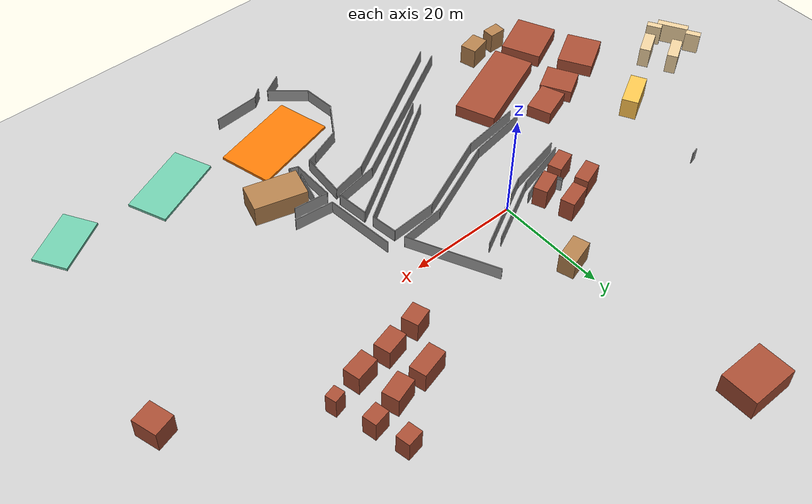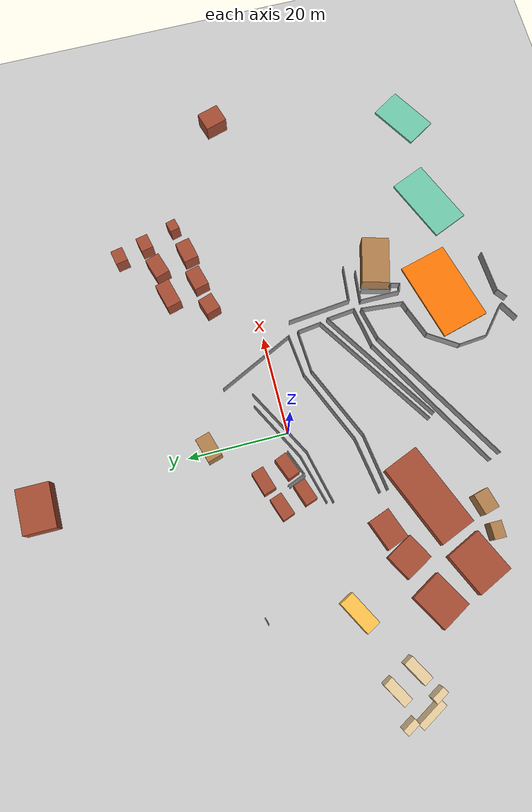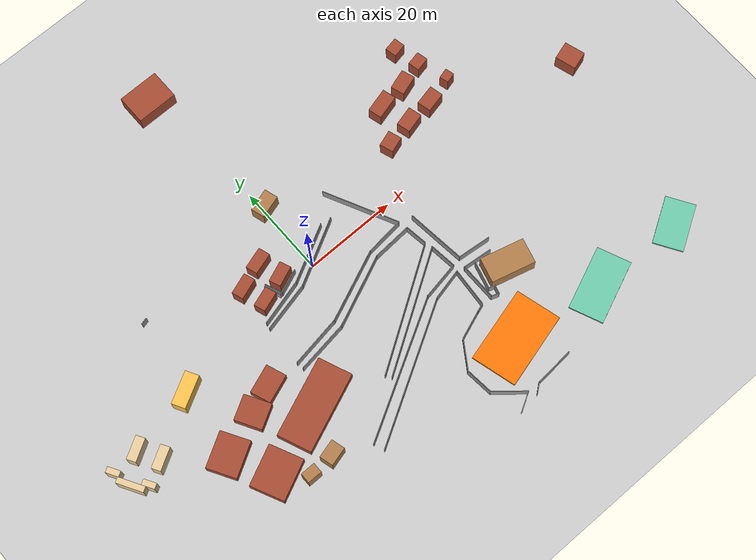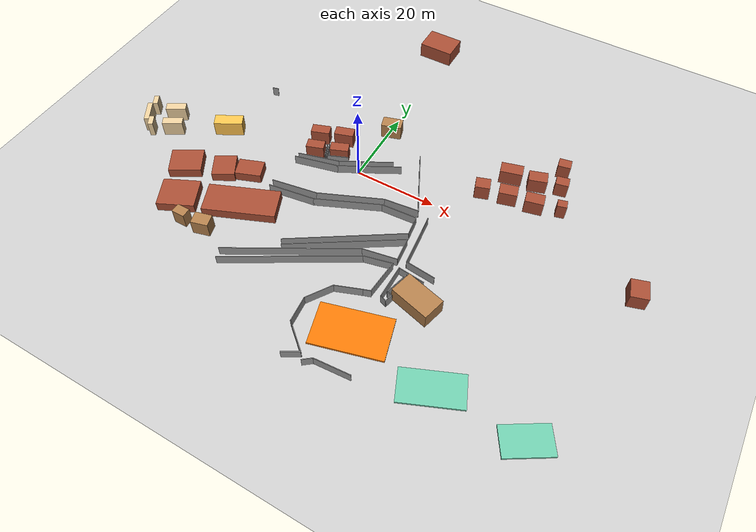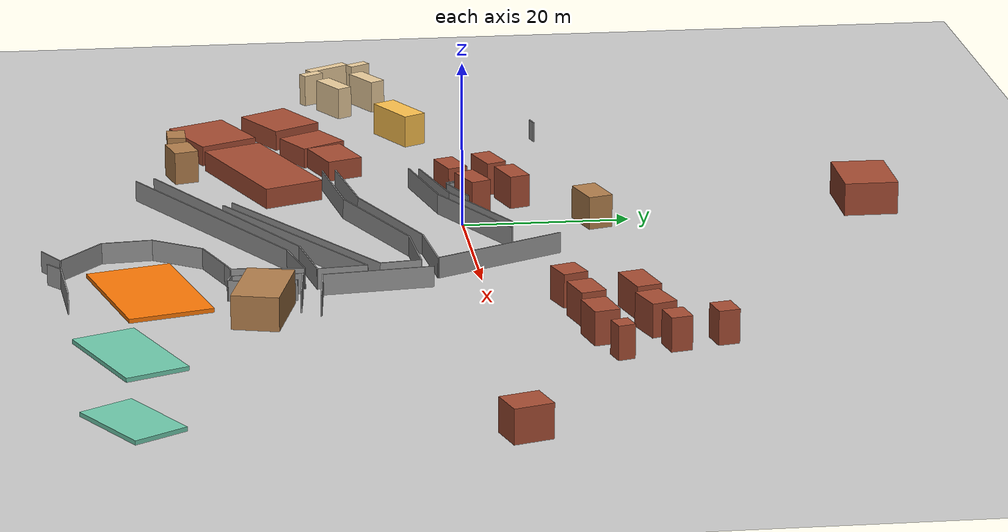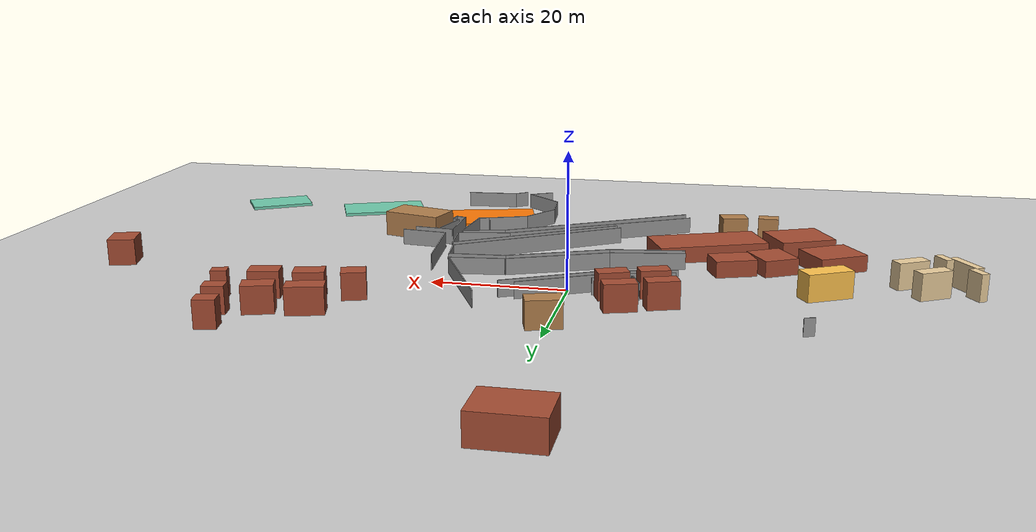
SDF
<sdf version="1.7">
 <world name="default">
  <model name="ground_plane">
   <static>1</static>
   <link name="link">
    <collision name="collision">
     <geometry><plane><normal>0 0 1</normal><size>100 100</size></plane></geometry>
     <surface><friction><ode><mu>100</mu><mu2>50</mu2></ode></friction></surface>
    </collision>
    <visual name="visual">
     <cast_shadows>0</cast_shadows>
     <geometry><plane><normal>0 0 1</normal><size>100 100</size></plane></geometry>
     <material>
      <script><uri>file://media/materials/scripts/gazebo.material</uri><name>Gazebo/Grey</name></script>
     </material>
    </visual>
   </link>
  </model>
  <model name="final_max_v1">
   <pose>-2.52311 0.689104 0 0 -0 0</pose>
   <link name="Wall_133">
    <collision name="Wall_133_Collision">
     <geometry><box><size>7.27213 0.15 2.5</size></box></geometry>
     <pose>0 0 1.25 0 -0 0</pose>
    </collision>
    <visual name="Wall_133_Visual">
     <pose>0 0 1.25 0 -0 0</pose>
     <geometry><box><size>7.27213 0.15 2.5</size></box></geometry>
     <material>
      <script><uri>file://media/materials/scripts/gazebo.material</uri><name>Gazebo/Grey</name></script>
      <ambient>1 1 1 1</ambient>
     </material>
     <meta><layer>0</layer></meta>
    </visual>
    <pose>29.0757 -19.6259 0 0 -0 3.03807</pose>
   </link>
   <link name="Wall_134">
    <collision name="Wall_134_Collision">
     <geometry><box><size>13.0122 0.15 2.5</size></box></geometry>
     <pose>0 0 1.25 0 -0 0</pose>
    </collision>
    <visual name="Wall_134_Visual">
     <pose>0 0 1.25 0 -0 0</pose>
     <geometry><box><size>13.0122 0.15 2.5</size></box></geometry>
     <material>
      <script><uri>file://media/materials/scripts/gazebo.material</uri><name>Gazebo/Grey</name></script>
      <ambient>1 1 1 1</ambient>
     </material>
     <meta><layer>0</layer></meta>
    </visual>
    <pose>24.8437 -12.8639 0 0 -0 1.67829</pose>
   </link>
   <link name="Wall_340">
    <collision name="Wall_340_Collision">
     <geometry><box><size>3.71476 0.15 2.5</size></box></geometry>
     <pose>0 0 1.25 0 -0 0</pose>
    </collision>
    <visual name="Wall_340_Visual">
     <pose>0 0 1.25 0 -0 0</pose>
     <geometry><box><size>3.71476 0.15 2.5</size></box></geometry>
     <material>
      <script><uri>file://media/materials/scripts/gazebo.material</uri><name>Gazebo/Grey</name></script>
      <ambient>1 1 1 1</ambient>
     </material>
     <meta><layer>0</layer></meta>
    </visual>
    <pose>-7.2047 0.047724 0 0 -0 1.9622</pose>
   </link>
   <link name="Wall_343">
    <collision name="Wall_343_Collision">
     <geometry><box><size>3.92824 0.15 2.5</size></box></geometry>
     <pose>0 0 1.25 0 -0 0</pose>
    </collision>
    <visual name="Wall_343_Visual">
     <pose>0 0 1.25 0 -0 0</pose>
     <geometry><box><size>3.92824 0.15 2.5</size></box></geometry>
     <material>
      <script><uri>file://media/materials/scripts/gazebo.material</uri><name>Gazebo/Grey</name></script>
      <ambient>1 1 1 1</ambient>
     </material>
     <meta><layer>0</layer></meta>
    </visual>
    <pose>-6.76011 0.204637 0 0 -0 -1.18772</pose>
   </link>
   <link name="Wall_344">
    <collision name="Wall_344_Collision">
     <geometry><box><size>5.45315 0.15 2.5</size></box></geometry>
     <pose>0 0 1.25 0 -0 0</pose>
    </collision>
    <visual name="Wall_344_Visual">
     <pose>0 0 1.25 0 -0 0</pose>
     <geometry><box><size>5.45315 0.15 2.5</size></box></geometry>
     <material>
      <script><uri>file://media/materials/scripts/gazebo.material</uri><name>Gazebo/Grey</name></script>
      <ambient>1 1 1 1</ambient>
     </material>
     <meta><layer>0</layer></meta>
    </visual>
    <pose>-3.5957 -0.553775 0 0 -0 0.384169</pose>
   </link>
   <link name="Wall_40">
    <collision name="Wall_40_Collision">
     <geometry><box><size>6 0.15 2.5</size></box></geometry>
     <pose>0 0 1.25 0 -0 0</pose>
    </collision>
    <visual name="Wall_40_Visual">
     <pose>0 0 1.25 0 -0 0</pose>
     <geometry><box><size>6 0.15 2.5</size></box></geometry>
     <material>
      <script><uri>file://media/materials/scripts/gazebo.material</uri><name>Gazebo/Grey</name></script>
      <ambient>1 1 1 1</ambient>
     </material>
     <meta><layer>0</layer></meta>
    </visual>
    <pose>26.349 -25.1026 0 0 -0 -1.8326</pose>
   </link>
   <link name="Wall_41">
    <collision name="Wall_41_Collision">
     <geometry><box><size>1.48764 0.15 2.5</size></box></geometry>
     <pose>0 0 1.25 0 -0 0</pose>
    </collision>
    <visual name="Wall_41_Visual">
     <pose>0 0 1.25 0 -0 0</pose>
     <geometry><box><size>1.48764 0.15 2.5</size></box></geometry>
     <material>
      <script><uri>file://media/materials/scripts/gazebo.material</uri><name>Gazebo/Grey</name></script>
      <ambient>1 1 1 1</ambient>
     </material>
     <meta><layer>0</layer></meta>
    </visual>
    <pose>26.2317 -28.1229 0 0 -0 -0.295878</pose>
   </link>
   <link name="Wall_42">
    <collision name="Wall_42_Collision">
     <geometry><box><size>2 0.15 2.5</size></box></geometry>
     <pose>0 0 1.25 0 -0 0</pose>
    </collision>
    <visual name="Wall_42_Visual">
     <pose>0 0 1.25 0 -0 0</pose>
     <geometry><box><size>2 0.15 2.5</size></box></geometry>
     <material>
      <script><uri>file://media/materials/scripts/gazebo.material</uri><name>Gazebo/Grey</name></script>
      <ambient>1 1 1 1</ambient>
     </material>
     <meta><layer>0</layer></meta>
    </visual>
    <pose>26.6321 -29.2114 0 0 -0 -1.8326</pose>
   </link>
   <link name="Wall_43">
    <collision name="Wall_43_Collision">
     <geometry><box><size>1.74606 0.15 2.5</size></box></geometry>
     <pose>0 0 1.25 0 -0 0</pose>
    </collision>
    <visual name="Wall_43_Visual">
     <pose>0 0 1.25 0 -0 0</pose>
     <geometry><box><size>1.74606 0.15 2.5</size></box></geometry>
     <material>
      <script><uri>file://media/materials/scripts/gazebo.material</uri><name>Gazebo/Grey</name></script>
      <ambient>1 1 1 1</ambient>
     </material>
     <meta><layer>0</layer></meta>
    </visual>
    <pose>25.6408 -29.8375 0 0 -0 2.79991</pose>
   </link>
   <link name="Wall_44">
    <collision name="Wall_44_Collision">
     <geometry><box><size>8.25 0.15 2.5</size></box></geometry>
     <pose>0 0 1.25 0 -0 0</pose>
    </collision>
    <visual name="Wall_44_Visual">
     <pose>0 0 1.25 0 -0 0</pose>
     <geometry><box><size>8.25 0.15 2.5</size></box></geometry>
     <material>
      <script><uri>file://media/materials/scripts/gazebo.material</uri><name>Gazebo/Grey</name></script>
      <ambient>1 1 1 1</ambient>
     </material>
     <meta><layer>0</layer></meta>
    </visual>
    <pose>24.8889 -25.5201 0 0 -0 1.5708</pose>
   </link>
   <link name="Wall_45">
    <collision name="Wall_45_Collision">
     <geometry><box><size>6.45508 0.15 2.5</size></box></geometry>
     <pose>0 0 1.25 0 -0 0</pose>
    </collision>
    <visual name="Wall_45_Visual">
     <pose>0 0 1.25 0 -0 0</pose>
     <geometry><box><size>6.45508 0.15 2.5</size></box></geometry>
     <material>
      <script><uri>file://media/materials/scripts/gazebo.material</uri><name>Gazebo/Grey</name></script>
      <ambient>1 1 1 1</ambient>
     </material>
     <meta><layer>0</layer></meta>
    </visual>
    <pose>28.0239 -21.8018 0 0 -0 -0.105418</pose>
   </link>
   <link name="Wall_452">
    <collision name="Wall_452_Collision">
     <geometry><box><size>10.25 0.15 2.5</size></box></geometry>
     <pose>0 0 1.25 0 -0 0</pose>
    </collision>
    <visual name="Wall_452_Visual">
     <pose>0 0 1.25 0 -0 0</pose>
     <geometry><box><size>10.25 0.15 2.5</size></box></geometry>
     <material>
      <script><uri>file://media/materials/scripts/gazebo.material</uri><name>Gazebo/Grey</name></script>
      <ambient>1 1 1 1</ambient>
     </material>
     <meta><layer>0</layer></meta>
    </visual>
    <pose>-7.47787 -3.02001 0 0 -0 0.261799</pose>
   </link>
   <link name="Wall_453">
    <collision name="Wall_453_Collision">
     <geometry><box><size>13.3527 0.15 2.5</size></box></geometry>
     <pose>0 0 1.25 0 -0 0</pose>
    </collision>
    <visual name="Wall_453_Visual">
     <pose>0 0 1.25 0 -0 0</pose>
     <geometry><box><size>13.3527 0.15 2.5</size></box></geometry>
     <material>
      <script><uri>file://media/materials/scripts/gazebo.material</uri><name>Gazebo/Grey</name></script>
      <ambient>1 1 1 1</ambient>
     </material>
     <meta><layer>0</layer></meta>
    </visual>
    <pose>3.23877 1.36715 0 0 -0 0.485432</pose>
   </link>
   <link name="Wall_475">
    <collision name="Wall_475_Collision">
     <geometry><box><size>16.9261 0.15 2.5</size></box></geometry>
     <pose>0 0 1.25 0 -0 0</pose>
    </collision>
    <visual name="Wall_475_Visual">
     <pose>0 0 1.25 0 -0 0</pose>
     <geometry><box><size>16.9261 0.15 2.5</size></box></geometry>
     <material>
      <script><uri>file://media/materials/scripts/gazebo.material</uri><name>Gazebo/Grey</name></script>
      <ambient>1 1 1 1</ambient>
     </material>
     <meta><layer>0</layer></meta>
    </visual>
    <pose>17.5605 1.92686 0 0 -0 -1.11557</pose>
   </link>
   <link name="Wall_498">
    <collision name="Wall_498_Collision">
     <geometry><box><size>28.1608 0.15 2.5</size></box></geometry>
     <pose>0 0 1.25 0 -0 0</pose>
    </collision>
    <visual name="Wall_498_Visual">
     <pose>0 0 1.25 0 -0 0</pose>
     <geometry><box><size>28.1608 0.15 2.5</size></box></geometry>
     <material>
      <script><uri>file://media/materials/scripts/gazebo.material</uri><name>Gazebo/Grey</name></script>
      <ambient>1 1 1 1</ambient>
     </material>
     <meta><layer>0</layer></meta>
    </visual>
    <pose>11.0228 -21.4678 0 0 -0 0.566245</pose>
   </link>
   <link name="Wall_503">
    <collision name="Wall_503_Collision">
     <geometry><box><size>31.8278 0.15 2.5</size></box></geometry>
     <pose>0 0 1.25 0 -0 0</pose>
    </collision>
    <visual name="Wall_503_Visual">
     <pose>0 0 1.25 0 -0 0</pose>
     <geometry><box><size>31.8278 0.15 2.5</size></box></geometry>
     <material>
      <script><uri>file://media/materials/scripts/gazebo.material</uri><name>Gazebo/Grey</name></script>
      <ambient>1 1 1 1</ambient>
     </material>
     <meta><layer>0</layer></meta>
    </visual>
    <pose>1.59172 -28.9196 0 0 -0 0.51392</pose>
   </link>
   <link name="Wall_505">
    <collision name="Wall_505_Collision">
     <geometry><box><size>8.37199 0.15 2.5</size></box></geometry>
     <pose>0 0 1.25 0 -0 0</pose>
    </collision>
    <visual name="Wall_505_Visual">
     <pose>0 0 1.25 0 -0 0</pose>
     <geometry><box><size>8.37199 0.15 2.5</size></box></geometry>
     <material>
      <script><uri>file://media/materials/scripts/gazebo.material</uri><name>Gazebo/Grey</name></script>
      <ambient>1 1 1 1</ambient>
     </material>
     <meta><layer>0</layer></meta>
    </visual>
    <pose>19.4335 -20.4214 0 0 -0 0.174045</pose>
   </link>
   <link name="Wall_506">
    <collision name="Wall_506_Collision">
     <geometry><box><size>5.94059 0.15 2.5</size></box></geometry>
     <pose>0 0 1.25 0 -0 0</pose>
    </collision>
    <visual name="Wall_506_Visual">
     <pose>0 0 1.25 0 -0 0</pose>
     <geometry><box><size>5.94059 0.15 2.5</size></box></geometry>
     <material>
      <script><uri>file://media/materials/scripts/gazebo.material</uri><name>Gazebo/Grey</name></script>
      <ambient>1 1 1 1</ambient>
     </material>
     <meta><layer>0</layer></meta>
    </visual>
    <pose>23.1623 -16.832 0 0 -0 1.68157</pose>
   </link>
   <link name="Wall_534">
    <collision name="Wall_534_Collision">
     <geometry><box><size>28.6684 0.15 2.5</size></box></geometry>
     <pose>0 0 1.25 0 -0 0</pose>
    </collision>
    <visual name="Wall_534_Visual">
     <pose>0 0 1.25 0 -0 0</pose>
     <geometry><box><size>28.6684 0.15 2.5</size></box></geometry>
     <material>
      <script><uri>file://media/materials/scripts/gazebo.material</uri><name>Gazebo/Grey</name></script>
      <ambient>1 1 1 1</ambient>
     </material>
     <meta><layer>0</layer></meta>
    </visual>
    <pose>10.3666 -20.1085 0 0 -0 0.573606</pose>
   </link>
   <link name="Wall_540">
    <collision name="Wall_540_Collision">
     <geometry><box><size>11.4761 0.15 2.5</size></box></geometry>
     <pose>0 0 1.25 0 -0 0</pose>
    </collision>
    <visual name="Wall_540_Visual">
     <pose>0 0 1.25 0 -0 0</pose>
     <geometry><box><size>11.4761 0.15 2.5</size></box></geometry>
     <material>
      <script><uri>file://media/materials/scripts/gazebo.material</uri><name>Gazebo/Grey</name></script>
      <ambient>1 1 1 1</ambient>
     </material>
     <meta><layer>0</layer></meta>
    </visual>
    <pose>-7.21545 -15.3556 0 0 -0 0.141897</pose>
   </link>
   <link name="Wall_541">
    <collision name="Wall_541_Collision">
     <geometry><box><size>16.2514 0.15 2.5</size></box></geometry>
     <pose>0 0 1.25 0 -0 0</pose>
    </collision>
    <visual name="Wall_541_Visual">
     <pose>0 0 1.25 0 -0 0</pose>
     <geometry><box><size>16.2514 0.15 2.5</size></box></geometry>
     <material>
      <script><uri>file://media/materials/scripts/gazebo.material</uri><name>Gazebo/Grey</name></script>
      <ambient>1 1 1 1</ambient>
     </material>
     <meta><layer>0</layer></meta>
    </visual>
    <pose>5.77658 -11.3512 0 0 -0 0.409246</pose>
   </link>
   <link name="Wall_542">
    <collision name="Wall_542_Collision">
     <geometry><box><size>8.70937 0.15 2.5</size></box></geometry>
     <pose>0 0 1.25 0 -0 0</pose>
    </collision>
    <visual name="Wall_542_Visual">
     <pose>0 0 1.25 0 -0 0</pose>
     <geometry><box><size>8.70937 0.15 2.5</size></box></geometry>
     <material>
      <script><uri>file://media/materials/scripts/gazebo.material</uri><name>Gazebo/Grey</name></script>
      <ambient>1 1 1 1</ambient>
     </material>
     <meta><layer>0</layer></meta>
    </visual>
    <pose>17.4338 -7.88069 0 0 -0 0.062419</pose>
   </link>
   <link name="Wall_543">
    <collision name="Wall_543_Collision">
     <geometry><box><size>4.94946 0.15 2.5</size></box></geometry>
     <pose>0 0 1.25 0 -0 0</pose>
    </collision>
    <visual name="Wall_543_Visual">
     <pose>0 0 1.25 0 -0 0</pose>
     <geometry><box><size>4.94946 0.15 2.5</size></box></geometry>
     <material>
      <script><uri>file://media/materials/scripts/gazebo.material</uri><name>Gazebo/Grey</name></script>
      <ambient>1 1 1 1</ambient>
     </material>
     <meta><layer>0</layer></meta>
    </visual>
    <pose>22.0244 -9.99213 0 0 -0 -1.43738</pose>
   </link>
   <link name="Wall_548">
    <collision name="Wall_548_Collision">
     <geometry><box><size>16.1594 0.15 2.5</size></box></geometry>
     <pose>0 0 1.25 0 -0 0</pose>
    </collision>
    <visual name="Wall_548_Visual">
     <pose>0 0 1.25 0 -0 0</pose>
     <geometry><box><size>16.1594 0.15 2.5</size></box></geometry>
     <material>
      <script><uri>file://media/materials/scripts/gazebo.material</uri><name>Gazebo/Grey</name></script>
      <ambient>1 1 1 1</ambient>
     </material>
     <meta><layer>0</layer></meta>
    </visual>
    <pose>5.46057 -9.63071 0 0 -0 0.401581</pose>
   </link>
   <link name="Wall_549">
    <collision name="Wall_549_Collision">
     <geometry><box><size>8.61735 0.15 2.5</size></box></geometry>
     <pose>0 0 1.25 0 -0 0</pose>
    </collision>
    <visual name="Wall_549_Visual">
     <pose>0 0 1.25 0 -0 0</pose>
     <geometry><box><size>8.61735 0.15 2.5</size></box></geometry>
     <material>
      <script><uri>file://media/materials/scripts/gazebo.material</uri><name>Gazebo/Grey</name></script>
      <ambient>1 1 1 1</ambient>
     </material>
     <meta><layer>0</layer></meta>
    </visual>
    <pose>17.0384 -6.05442 0 0 -0 0.105888</pose>
   </link>
   <link name="Wall_56">
    <collision name="Wall_56_Collision">
     <geometry><box><size>2.49338 0.15 2.5</size></box></geometry>
     <pose>0 0 1.25 0 -0 0</pose>
    </collision>
    <visual name="Wall_56_Visual">
     <pose>0 0 1.25 0 -0 0</pose>
     <geometry><box><size>2.49338 0.15 2.5</size></box></geometry>
     <material>
      <script><uri>file://media/materials/scripts/gazebo.material</uri><name>Gazebo/Grey</name></script>
      <ambient>1 1 1 1</ambient>
     </material>
     <meta><layer>0</layer></meta>
    </visual>
    <pose>19.35 -49.4619 0 0 -0 0.668129</pose>
   </link>
   <link name="Wall_602">
    <collision name="Wall_602_Collision">
     <geometry><box><size>11.3908 0.15 2.5</size></box></geometry>
     <pose>0 0 1.25 0 -0 0</pose>
    </collision>
    <visual name="Wall_602_Visual">
     <pose>0 0 1.25 0 -0 0</pose>
     <geometry><box><size>11.3908 0.15 2.5</size></box></geometry>
     <material>
      <script><uri>file://media/materials/scripts/gazebo.material</uri><name>Gazebo/Grey</name></script>
      <ambient>1 1 1 1</ambient>
     </material>
     <meta><layer>0</layer></meta>
    </visual>
    <pose>-7.45639 -13.6522 0 0 -0 0.159507</pose>
   </link>
   <link name="Wall_606">
    <collision name="Wall_606_Collision">
     <geometry><box><size>10.961 0.15 2.5</size></box></geometry>
     <pose>0 0 1.25 0 -0 0</pose>
    </collision>
    <visual name="Wall_606_Visual">
     <pose>0 0 1.25 0 -0 0</pose>
     <geometry><box><size>10.961 0.15 2.5</size></box></geometry>
     <material>
      <script><uri>file://media/materials/scripts/gazebo.material</uri><name>Gazebo/Grey</name></script>
      <ambient>1 1 1 1</ambient>
     </material>
     <meta><layer>0</layer></meta>
    </visual>
    <pose>-7.32839 -4.33404 0 0 -0 0.231091</pose>
   </link>
   <link name="Wall_607">
    <collision name="Wall_607_Collision">
     <geometry><box><size>15.5213 0.15 2.5</size></box></geometry>
     <pose>0 0 1.25 0 -0 0</pose>
    </collision>
    <visual name="Wall_607_Visual">
     <pose>0 0 1.25 0 -0 0</pose>
     <geometry><box><size>15.5213 0.15 2.5</size></box></geometry>
     <material>
      <script><uri>file://media/materials/scripts/gazebo.material</uri><name>Gazebo/Grey</name></script>
      <ambient>1 1 1 1</ambient>
     </material>
     <meta><layer>0</layer></meta>
    </visual>
    <pose>4.70413 0.540875 0 0 -0 0.492919</pose>
   </link>
   <link name="Wall_76">
    <collision name="Wall_76_Collision">
     <geometry><box><size>4.25 0.15 2.5</size></box></geometry>
     <pose>0 0 1.25 0 -0 0</pose>
    </collision>
    <visual name="Wall_76_Visual">
     <pose>0 0 1.25 0 -0 0</pose>
     <geometry><box><size>4.25 0.15 2.5</size></box></geometry>
     <material>
      <script><uri>file://media/materials/scripts/gazebo.material</uri><name>Gazebo/Grey</name></script>
      <ambient>1 1 1 1</ambient>
     </material>
     <meta><layer>0</layer></meta>
    </visual>
    <pose>15.5961 -49.7666 0 0 -0 0.523599</pose>
   </link>
   <link name="Wall_77">
    <collision name="Wall_77_Collision">
     <geometry><box><size>7.6073 0.15 2.5</size></box></geometry>
     <pose>0 0 1.25 0 -0 0</pose>
    </collision>
    <visual name="Wall_77_Visual">
     <pose>0 0 1.25 0 -0 0</pose>
     <geometry><box><size>7.6073 0.15 2.5</size></box></geometry>
     <material>
      <script><uri>file://media/materials/scripts/gazebo.material</uri><name>Gazebo/Grey</name></script>
      <ambient>1 1 1 1</ambient>
     </material>
     <meta><layer>0</layer></meta>
    </visual>
    <pose>14.5391 -46.3166 0 0 -0 2.43352</pose>
   </link>
   <link name="Wall_78">
    <collision name="Wall_78_Collision">
     <geometry><box><size>6.10962 0.15 2.5</size></box></geometry>
     <pose>0 0 1.25 0 -0 0</pose>
    </collision>
    <visual name="Wall_78_Visual">
     <pose>0 0 1.25 0 -0 0</pose>
     <geometry><box><size>6.10962 0.15 2.5</size></box></geometry>
     <material>
      <script><uri>file://media/materials/scripts/gazebo.material</uri><name>Gazebo/Grey</name></script>
      <ambient>1 1 1 1</ambient>
     </material>
     <meta><layer>0</layer></meta>
    </visual>
    <pose>11.4307 -40.9246 0 0 -0 1.66355</pose>
   </link>
   <link name="Wall_79">
    <collision name="Wall_79_Collision">
     <geometry><box><size>6.92466 0.15 2.5</size></box></geometry>
     <pose>0 0 1.25 0 -0 0</pose>
    </collision>
    <visual name="Wall_79_Visual">
     <pose>0 0 1.25 0 -0 0</pose>
     <geometry><box><size>6.92466 0.15 2.5</size></box></geometry>
     <material>
      <script><uri>file://media/materials/scripts/gazebo.material</uri><name>Gazebo/Grey</name></script>
      <ambient>1 1 1 1</ambient>
     </material>
     <meta><layer>0</layer></meta>
    </visual>
    <pose>13.0177 -35.1286 0 0 -0 0.988443</pose>
   </link>
   <link name="Wall_8">
    <collision name="Wall_8_Collision">
     <geometry><box><size>8.5714 0.15 2.5</size></box></geometry>
     <pose>0 0 1.25 0 -0 0</pose>
    </collision>
    <visual name="Wall_8_Visual">
     <pose>0 0 1.25 0 -0 0</pose>
     <geometry><box><size>8.5714 0.15 2.5</size></box></geometry>
     <material>
      <script><uri>file://media/materials/scripts/gazebo.material</uri><name>Gazebo/Grey</name></script>
      <ambient>1 1 1 1</ambient>
     </material>
     <meta><layer>0</layer></meta>
    </visual>
    <pose>24.4698 -48.436 0 0 -0 0.071307</pose>
   </link>
   <link name="Wall_80">
    <collision name="Wall_80_Collision">
     <geometry><box><size>6.48148 0.15 2.5</size></box></geometry>
     <pose>0 0 1.25 0 -0 0</pose>
    </collision>
    <visual name="Wall_80_Visual">
     <pose>0 0 1.25 0 -0 0</pose>
     <geometry><box><size>6.48148 0.15 2.5</size></box></geometry>
     <material>
      <script><uri>file://media/materials/scripts/gazebo.material</uri><name>Gazebo/Grey</name></script>
      <ambient>1 1 1 1</ambient>
     </material>
     <meta><layer>0</layer></meta>
    </visual>
    <pose>17.8477 -31.1956 0 0 -0 0.35622</pose>
   </link>
   <link name="Wall_81">
    <collision name="Wall_81_Collision">
     <geometry><box><size>1.89558 0.15 2.5</size></box></geometry>
     <pose>0 0 1.25 0 -0 0</pose>
    </collision>
    <visual name="Wall_81_Visual">
     <pose>0 0 1.25 0 -0 0</pose>
     <geometry><box><size>1.89558 0.15 2.5</size></box></geometry>
     <material>
      <script><uri>file://media/materials/scripts/gazebo.material</uri><name>Gazebo/Grey</name></script>
      <ambient>1 1 1 1</ambient>
     </material>
     <meta><layer>0</layer></meta>
    </visual>
    <pose>21.6427 -29.8156 0 0 -0 0.321751</pose>
   </link>
   <link name="Wall_82">
    <collision name="Wall_82_Collision">
     <geometry><box><size>8.59623 0.15 2.5</size></box></geometry>
     <pose>0 0 1.25 0 -0 0</pose>
    </collision>
    <visual name="Wall_82_Visual">
     <pose>0 0 1.25 0 -0 0</pose>
     <geometry><box><size>8.59623 0.15 2.5</size></box></geometry>
     <material>
      <script><uri>file://media/materials/scripts/gazebo.material</uri><name>Gazebo/Grey</name></script>
      <ambient>1 1 1 1</ambient>
     </material>
     <meta><layer>0</layer></meta>
    </visual>
    <pose>22.8157 -25.3306 0 0 -0 1.48901</pose>
   </link>
   <link name="Wall_83">
    <collision name="Wall_83_Collision">
     <geometry><box><size>6.94571 0.15 2.5</size></box></geometry>
     <pose>0 0 1.25 0 -0 0</pose>
    </collision>
    <visual name="Wall_83_Visual">
     <pose>0 0 1.25 0 -0 0</pose>
     <geometry><box><size>6.94571 0.15 2.5</size></box></geometry>
     <material>
      <script><uri>file://media/materials/scripts/gazebo.material</uri><name>Gazebo/Grey</name></script>
      <ambient>1 1 1 1</ambient>
     </material>
     <meta><layer>0</layer></meta>
    </visual>
    <pose>19.8487 -21.8806 0 0 -0 -2.91632</pose>
   </link>
   <link name="Wall_84">
    <collision name="Wall_84_Collision">
     <geometry><box><size>32.4337 0.15 2.5</size></box></geometry>
     <pose>0 0 1.25 0 -0 0</pose>
    </collision>
    <visual name="Wall_84_Visual">
     <pose>0 0 1.25 0 -0 0</pose>
     <geometry><box><size>32.4337 0.15 2.5</size></box></geometry>
     <material>
      <script><uri>file://media/materials/scripts/gazebo.material</uri><name>Gazebo/Grey</name></script>
      <ambient>1 1 1 1</ambient>
     </material>
     <meta><layer>0</layer></meta>
    </visual>
    <pose>2.59875 -30.7816 0 0 -0 -2.6129</pose>
   </link>
   <static>1</static>
  </model>
  <model name="v2">
   <pose>7.18403 2.61144 0 0 -0 0</pose>
   <link name="Wall_16">
    <collision name="Wall_16_Collision">
     <geometry><box><size>2.80067 1.25 4</size></box></geometry>
     <pose>0 0 2 0 -0 0</pose>
    </collision>
    <visual name="Wall_16_Visual">
     <pose>0 0 2 0 -0 0</pose>
     <geometry><box><size>2.80067 1.25 4</size></box></geometry>
     <material>
      <script><uri>file://media/materials/scripts/gazebo.material</uri><name>Gazebo/Grey</name></script>
      <ambient>0.921569 0.807843 0.615686 1</ambient>
     </material>
     <meta><layer>0</layer></meta>
    </visual>
    <pose>-59.5805 -16.5579 0 0 -0 2.09418</pose>
   </link>
   <link name="Wall_18">
    <collision name="Wall_18_Collision">
     <geometry><box><size>2.80018 1.25 4</size></box></geometry>
     <pose>0 0 2 0 -0 0</pose>
    </collision>
    <visual name="Wall_18_Visual">
     <pose>0 0 2 0 -0 0</pose>
     <geometry><box><size>2.80018 1.25 4</size></box></geometry>
     <material>
      <script><uri>file://media/materials/scripts/gazebo.material</uri><name>Gazebo/Grey</name></script>
      <ambient>0.921569 0.807843 0.615686 1</ambient>
     </material>
     <meta><layer>0</layer></meta>
    </visual>
    <pose>-63.2985 -10.1519 0 0 -0 2.09418</pose>
   </link>
   <link name="Wall_20">
    <collision name="Wall_20_Collision">
     <geometry><box><size>5.80026 1.25 4</size></box></geometry>
     <pose>0 0 2 0 -0 0</pose>
    </collision>
    <visual name="Wall_20_Visual">
     <pose>0 0 2 0 -0 0</pose>
     <geometry><box><size>5.80026 1.25 4</size></box></geometry>
     <material>
      <script><uri>file://media/materials/scripts/gazebo.material</uri><name>Gazebo/Grey</name></script>
      <ambient>0.921569 0.807843 0.615686 1</ambient>
     </material>
     <meta><layer>0</layer></meta>
    </visual>
    <pose>-62.3175 -14.3269 0 0 -0 -1.04726</pose>
   </link>
   <link name="Wall_23">
    <collision name="Wall_23_Collision">
     <geometry><box><size>5 2 4</size></box></geometry>
     <pose>0 0 2 0 -0 0</pose>
    </collision>
    <visual name="Wall_23_Visual">
     <pose>0 0 2 0 -0 0</pose>
     <geometry><box><size>5 2 4</size></box></geometry>
     <material>
      <script><uri>file://media/materials/scripts/gazebo.material</uri><name>Gazebo/Grey</name></script>
      <ambient>0.921569 0.807843 0.615686 1</ambient>
     </material>
     <meta><layer>0</layer></meta>
    </visual>
    <pose>-57.232 -9.51344 0 0 -0 0.523611</pose>
   </link>
   <link name="Wall_29">
    <collision name="Wall_29_Collision">
     <geometry><box><size>5 2 4</size></box></geometry>
     <pose>0 0 2 0 -0 0</pose>
    </collision>
    <visual name="Wall_29_Visual">
     <pose>0 0 2 0 -0 0</pose>
     <geometry><box><size>5 2 4</size></box></geometry>
     <material>
      <script><uri>file://media/materials/scripts/gazebo.material</uri><name>Gazebo/Grey</name></script>
      <ambient>0.921569 0.807843 0.615686 1</ambient>
     </material>
     <meta><layer>0</layer></meta>
    </visual>
    <pose>-54.732 -14.0254 0 0 -0 0.523611</pose>
   </link>
   <link name="Wall_31">
    <collision name="Wall_31_Collision">
     <geometry><box><size>7.07571 3 4</size></box></geometry>
     <pose>0 0 2 0 -0 0</pose>
    </collision>
    <visual name="Wall_31_Visual">
     <pose>0 0 2 0 -0 0</pose>
     <geometry><box><size>7.07571 3 4</size></box></geometry>
     <material>
      <script><uri>file://media/materials/scripts/gazebo.material</uri><name>Gazebo/Grey</name></script>
      <ambient>1 0.764706 0.305882 1</ambient>
     </material>
     <meta><layer>0</layer></meta>
    </visual>
    <pose>-42.7581 -6.66576 0 0 -0 0.498005</pose>
   </link>
   <link name="Wall_34">
    <collision name="Wall_34_Collision">
     <geometry><box><size>4.34585 2.5 4</size></box></geometry>
     <pose>0 0 2 0 -0 0</pose>
    </collision>
    <visual name="Wall_34_Visual">
     <pose>0 0 2 0 -0 0</pose>
     <geometry><box><size>4.34585 2.5 4</size></box></geometry>
     <material>
      <script><uri>file://media/materials/scripts/gazebo.material</uri><name>Gazebo/Bricks</name></script>
      <ambient>0.435294 0.796078 0.67451 1</ambient>
     </material>
     <meta><layer>0</layer></meta>
    </visual>
    <pose>-19.3355 -2.70814 0 0 -0 0.327061</pose>
   </link>
   <link name="Wall_36">
    <collision name="Wall_36_Collision">
     <geometry><box><size>4.60603 2.5 4</size></box></geometry>
     <pose>0 0 2 0 -0 0</pose>
    </collision>
    <visual name="Wall_36_Visual">
     <pose>0 0 2 0 -0 0</pose>
     <geometry><box><size>4.60603 2.5 4</size></box></geometry>
     <material>
      <script><uri>file://media/materials/scripts/gazebo.material</uri><name>Gazebo/Bricks</name></script>
      <ambient>0.435294 0.796078 0.67451 1</ambient>
     </material>
     <meta><layer>0</layer></meta>
    </visual>
    <pose>-20.8855 2.15596 0 0 -0 0.337818</pose>
   </link>
   <link name="Wall_38">
    <collision name="Wall_38_Collision">
     <geometry><box><size>4.72487 2.54 4</size></box></geometry>
     <pose>0 0 2 0 -0 0</pose>
    </collision>
    <visual name="Wall_38_Visual">
     <pose>0 0 2 0 -0 0</pose>
     <geometry><box><size>4.72487 2.54 4</size></box></geometry>
     <material>
      <script><uri>file://media/materials/scripts/gazebo.material</uri><name>Gazebo/Bricks</name></script>
      <ambient>0.435294 0.796078 0.67451 1</ambient>
     </material>
     <meta><layer>0</layer></meta>
    </visual>
    <pose>-15.3648 4.35634 0 0 -0 0.303513</pose>
   </link>
   <link name="Wall_40">
    <collision name="Wall_40_Collision">
     <geometry><box><size>4.51058 2.5 4</size></box></geometry>
     <pose>0 0 2 0 -0 0</pose>
    </collision>
    <visual name="Wall_40_Visual">
     <pose>0 0 2 0 -0 0</pose>
     <geometry><box><size>4.51058 2.5 4</size></box></geometry>
     <material>
      <script><uri>file://media/materials/scripts/gazebo.material</uri><name>Gazebo/Bricks</name></script>
      <ambient>0.435294 0.796078 0.67451 1</ambient>
     </material>
     <meta><layer>0</layer></meta>
    </visual>
    <pose>-13.7627 -0.637549 0 0 -0 -2.76115</pose>
   </link>
   <link name="Wall_44">
    <collision name="Wall_44_Collision">
     <geometry><box><size>4.99946 3 4</size></box></geometry>
     <pose>0 0 2 0 -0 0</pose>
    </collision>
    <visual name="Wall_44_Visual">
     <pose>0 0 2 0 -0 0</pose>
     <geometry><box><size>4.99946 3 4</size></box></geometry>
     <material>
      <script><uri>file://media/materials/scripts/gazebo.material</uri><name>Gazebo/Wood</name></script>
      <ambient>0.996078 0.47451 0.0196078 1</ambient>
     </material>
     <meta><layer>0</layer></meta>
    </visual>
    <pose>-6.61215 12.9117 0 0 -0 0.291696</pose>
   </link>
   <link name="Wall_46">
    <collision name="Wall_46_Collision">
     <geometry><box><size>1.5 0.15 2.5</size></box></geometry>
     <pose>0 0 1.25 0 -0 0</pose>
    </collision>
    <visual name="Wall_46_Visual">
     <pose>0 0 1.25 0 -0 0</pose>
     <geometry><box><size>1.5 0.15 2.5</size></box></geometry>
     <material>
      <script><uri>file://media/materials/scripts/gazebo.material</uri><name>Gazebo/Grey</name></script>
      <ambient>1 1 1 1</ambient>
     </material>
     <meta><layer>0</layer></meta>
    </visual>
    <pose>-40.1047 9.97183 0 0 -0 -2.87979</pose>
   </link>
   <link name="Wall_50">
    <collision name="Wall_50_Collision">
     <geometry><box><size>3.5 3 4</size></box></geometry>
     <pose>0 0 2 0 -0 0</pose>
    </collision>
    <visual name="Wall_50_Visual">
     <pose>0 0 2 0 -0 0</pose>
     <geometry><box><size>3.5 3 4</size></box></geometry>
     <material>
      <script><uri>file://media/materials/scripts/gazebo.material</uri><name>Gazebo/Bricks</name></script>
      <ambient>0.435294 0.796078 0.67451 1</ambient>
     </material>
     <meta><layer>0</layer></meta>
    </visual>
    <pose>21.342 6.28056 0 0 -0 0.321751</pose>
   </link>
   <link name="Wall_52">
    <collision name="Wall_52_Collision">
     <geometry><box><size>4.3499 3 4</size></box></geometry>
     <pose>0 0 2 0 -0 0</pose>
    </collision>
    <visual name="Wall_52_Visual">
     <pose>0 0 2 0 -0 0</pose>
     <geometry><box><size>4.3499 3 4</size></box></geometry>
     <material>
      <script><uri>file://media/materials/scripts/gazebo.material</uri><name>Gazebo/Bricks</name></script>
      <ambient>0.435294 0.796078 0.67451 1</ambient>
     </material>
     <meta><layer>0</layer></meta>
    </visual>
    <pose>27.3657 7.42135 0 0 -0 0.261509</pose>
   </link>
   <link name="Wall_54">
    <collision name="Wall_54_Collision">
     <geometry><box><size>4.42155 3 4</size></box></geometry>
     <pose>0 0 2 0 -0 0</pose>
    </collision>
    <visual name="Wall_54_Visual">
     <pose>0 0 2 0 -0 0</pose>
     <geometry><box><size>4.42155 3 4</size></box></geometry>
     <material>
      <script><uri>file://media/materials/scripts/gazebo.material</uri><name>Gazebo/Bricks</name></script>
      <ambient>0.435294 0.796078 0.67451 1</ambient>
     </material>
     <meta><layer>0</layer></meta>
    </visual>
    <pose>33.6579 8.08386 0 0 -0 0.223626</pose>
   </link>
   <link name="Wall_56">
    <collision name="Wall_56_Collision">
     <geometry><box><size>5.35027 3 4</size></box></geometry>
     <pose>0 0 2 0 -0 0</pose>
    </collision>
    <visual name="Wall_56_Visual">
     <pose>0 0 2 0 -0 0</pose>
     <geometry><box><size>5.35027 3 4</size></box></geometry>
     <material>
      <script><uri>file://media/materials/scripts/gazebo.material</uri><name>Gazebo/Bricks</name></script>
      <ambient>0.435294 0.796078 0.67451 1</ambient>
     </material>
     <meta><layer>0</layer></meta>
    </visual>
    <pose>25.4744 13.7439 0 0 -0 0.26211</pose>
   </link>
   <link name="Wall_58">
    <collision name="Wall_58_Collision">
     <geometry><box><size>4.41995 3 4</size></box></geometry>
     <pose>0 0 2 0 -0 0</pose>
    </collision>
    <visual name="Wall_58_Visual">
     <pose>0 0 2 0 -0 0</pose>
     <geometry><box><size>4.41995 3 4</size></box></geometry>
     <material>
      <script><uri>file://media/materials/scripts/gazebo.material</uri><name>Gazebo/Bricks</name></script>
      <ambient>0.435294 0.796078 0.67451 1</ambient>
     </material>
     <meta><layer>0</layer></meta>
    </visual>
    <pose>31.829 14.5579 0 0 -0 0.313698</pose>
   </link>
   <link name="Wall_60">
    <collision name="Wall_60_Collision">
     <geometry><box><size>3.06617 2.5 4</size></box></geometry>
     <pose>0 0 2 0 -0 0</pose>
    </collision>
    <visual name="Wall_60_Visual">
     <pose>0 0 2 0 -0 0</pose>
     <geometry><box><size>3.06617 2.5 4</size></box></geometry>
     <material>
      <script><uri>file://media/materials/scripts/gazebo.material</uri><name>Gazebo/Bricks</name></script>
      <ambient>0.435294 0.796078 0.67451 1</ambient>
     </material>
     <meta><layer>0</layer></meta>
    </visual>
    <pose>37.322 16.0563 0 0 -0 0.209078</pose>
   </link>
   <link name="Wall_63">
    <collision name="Wall_63_Collision">
     <geometry><box><size>3.012 2.5 4</size></box></geometry>
     <pose>0 0 2 0 -0 0</pose>
    </collision>
    <visual name="Wall_63_Visual">
     <pose>0 0 2 0 -0 0</pose>
     <geometry><box><size>3.012 2.5 4</size></box></geometry>
     <material>
      <script><uri>file://media/materials/scripts/gazebo.material</uri><name>Gazebo/Bricks</name></script>
      <ambient>0.435294 0.796078 0.67451 1</ambient>
     </material>
     <meta><layer>0</layer></meta>
    </visual>
    <pose>35.818 21.5803 0 0 -0 0.195981</pose>
   </link>
   <link name="Wall_65">
    <collision name="Wall_65_Collision">
     <geometry><box><size>2.25 2 4</size></box></geometry>
     <pose>0 0 2 0 -0 0</pose>
    </collision>
    <visual name="Wall_65_Visual">
     <pose>0 0 2 0 -0 0</pose>
     <geometry><box><size>2.25 2 4</size></box></geometry>
     <material>
      <script><uri>file://media/materials/scripts/gazebo.material</uri><name>Gazebo/Bricks</name></script>
      <ambient>0.435294 0.796078 0.67451 1</ambient>
     </material>
     <meta><layer>0</layer></meta>
    </visual>
    <pose>39.6724 9.69292 0 0 -0 0.261799</pose>
   </link>
   <link name="Wall_67">
    <collision name="Wall_67_Collision">
     <geometry><box><size>4.58274 4 4</size></box></geometry>
     <pose>0 0 2 0 -0 0</pose>
    </collision>
    <visual name="Wall_67_Visual">
     <pose>0 0 2 0 -0 0</pose>
     <geometry><box><size>4.58274 4 4</size></box></geometry>
     <material>
      <script><uri>file://media/materials/scripts/gazebo.material</uri><name>Gazebo/Bricks</name></script>
      <ambient>0.760784 0.662745 0.627451 1</ambient>
     </material>
     <meta><layer>0</layer></meta>
    </visual>
    <pose>61.964 -3.76044 0 0 -0 1.86324</pose>
   </link>
   <link name="Wall_69">
    <collision name="Wall_69_Collision">
     <geometry><box><size>8.85 6.5 4</size></box></geometry>
     <pose>0 0 2 0 -0 0</pose>
    </collision>
    <visual name="Wall_69_Visual">
     <pose>0 0 2 0 -0 0</pose>
     <geometry><box><size>8.85 6.5 4</size></box></geometry>
     <material>
      <script><uri>file://media/materials/scripts/gazebo.material</uri><name>Gazebo/Bricks</name></script>
      <ambient>0.760784 0.662745 0.627451 1</ambient>
     </material>
     <meta><layer>0</layer></meta>
    </visual>
    <pose>-9.88503 46.6496 0 0 -0 0</pose>
   </link>
   <link name="Wall_74">
    <collision name="Wall_74_Collision">
     <geometry><box><size>4.10054 3 4</size></box></geometry>
     <pose>0 0 2 0 -0 0</pose>
    </collision>
    <visual name="Wall_74_Visual">
     <pose>0 0 2 0 -0 0</pose>
     <geometry><box><size>4.10054 3 4</size></box></geometry>
     <material>
      <script><uri>file://media/materials/scripts/gazebo.material</uri><name>Gazebo/Wood</name></script>
      <ambient>0.760784 0.662745 0.627451 1</ambient>
     </material>
     <meta><layer>0</layer></meta>
    </visual>
    <pose>-29.2687 -34.9525 0 0 -0 0.261949</pose>
   </link>
   <link name="Wall_76">
    <collision name="Wall_76_Collision">
     <geometry><box><size>3.2 2.25 4</size></box></geometry>
     <pose>0 0 2 0 -0 0</pose>
    </collision>
    <visual name="Wall_76_Visual">
     <pose>0 0 2 0 -0 0</pose>
     <geometry><box><size>3.2 2.25 4</size></box></geometry>
     <material>
      <script><uri>file://media/materials/scripts/gazebo.material</uri><name>Gazebo/Wood</name></script>
      <ambient>0.760784 0.662745 0.627451 1</ambient>
     </material>
     <meta><layer>0</layer></meta>
    </visual>
    <pose>-34.8435 -35.3558 0 0 -0 0</pose>
   </link>
   <link name="Wall_78">
    <collision name="Wall_78_Collision">
     <geometry><box><size>16.6002 10 0.5</size></box></geometry>
     <pose>0 0 0.25 0 -0 0</pose>
    </collision>
    <visual name="Wall_78_Visual">
     <pose>0 0 0.25 0 -0 0</pose>
     <geometry><box><size>16.6002 10 0.5</size></box></geometry>
     <material>
      <script><uri>file://media/materials/scripts/gazebo.material</uri><name>Gazebo/Grey</name></script>
      <ambient>0.996078 0.47451 0.0196078 1</ambient>
     </material>
     <meta><layer>0</layer></meta>
    </visual>
    <pose>13.5385 -40.7364 0 0 -0 0.261774</pose>
   </link>
   <link name="Wall_80">
    <collision name="Wall_80_Collision">
     <geometry><box><size>14.058 7.5 0.5</size></box></geometry>
     <pose>0 0 0.25 0 -0 0</pose>
    </collision>
    <visual name="Wall_80_Visual">
     <pose>0 0 0.25 0 -0 0</pose>
     <geometry><box><size>14.058 7.5 0.5</size></box></geometry>
     <material>
      <script><uri>file://media/materials/scripts/gazebo.material</uri><name>Gazebo/Grey</name></script>
      <ambient>0.435294 0.796078 0.67451 1</ambient>
     </material>
     <meta><layer>0</layer></meta>
    </visual>
    <pose>33.5944 -43.7091 0 0 -0 0.399844</pose>
   </link>
   <link name="Wall_82">
    <collision name="Wall_82_Collision">
     <geometry><box><size>10.486 6.5 0.5</size></box></geometry>
     <pose>0 0 0.25 0 -0 0</pose>
    </collision>
    <visual name="Wall_82_Visual">
     <pose>0 0 0.25 0 -0 0</pose>
     <geometry><box><size>10.486 6.5 0.5</size></box></geometry>
     <material>
      <script><uri>file://media/materials/scripts/gazebo.material</uri><name>Gazebo/Grey</name></script>
      <ambient>0.435294 0.796078 0.67451 1</ambient>
     </material>
     <meta><layer>0</layer></meta>
    </visual>
    <pose>53.8205 -44.1329 0 0 -0 0.549798</pose>
   </link>
   <link name="Wall_84">
    <collision name="Wall_84_Collision">
     <geometry><box><size>9.59967 5.5 4</size></box></geometry>
     <pose>0 0 2 0 -0 0</pose>
    </collision>
    <visual name="Wall_84_Visual">
     <pose>0 0 2 0 -0 0</pose>
     <geometry><box><size>9.59967 5.5 4</size></box></geometry>
     <material>
      <script><uri>file://media/materials/scripts/gazebo.material</uri><name>Gazebo/Wood</name></script>
      <ambient>1 1 1 1</ambient>
     </material>
     <meta><layer>0</layer></meta>
    </visual>
    <pose>22.208 -28.3729 0 0 -0 -0.261781</pose>
   </link>
   <link name="Wall_86">
    <collision name="Wall_86_Collision">
     <geometry><box><size>7.84988 6.5 2.5</size></box></geometry>
     <pose>0 0 1.25 0 -0 0</pose>
    </collision>
    <visual name="Wall_86_Visual">
     <pose>0 0 1.25 0 -0 0</pose>
     <geometry><box><size>7.84988 6.5 2.5</size></box></geometry>
     <material>
      <script><uri>file://media/materials/scripts/gazebo.material</uri><name>Gazebo/Bricks</name></script>
      <ambient>1 1 1 1</ambient>
     </material>
     <meta><layer>0</layer></meta>
    </visual>
    <pose>-44.4611 -21.7591 0 0 -0 0.523649</pose>
   </link>
   <link name="Wall_88">
    <collision name="Wall_88_Collision">
     <geometry><box><size>5.95284 5.5 2.5</size></box></geometry>
     <pose>0 0 1.25 0 -0 0</pose>
    </collision>
    <visual name="Wall_88_Visual">
     <pose>0 0 1.25 0 -0 0</pose>
     <geometry><box><size>5.95284 5.5 2.5</size></box></geometry>
     <material>
      <script><uri>file://media/materials/scripts/gazebo.material</uri><name>Gazebo/Bricks</name></script>
      <ambient>1 1 1 1</ambient>
     </material>
     <meta><layer>0</layer></meta>
    </visual>
    <pose>-35.5432 -18.3905 0 0 -0 2.08426</pose>
   </link>
   <link name="Wall_90">
    <collision name="Wall_90_Collision">
     <geometry><box><size>6.28786 4.5 2.5</size></box></geometry>
     <pose>0 0 1.25 0 -0 0</pose>
    </collision>
    <visual name="Wall_90_Visual">
     <pose>0 0 1.25 0 -0 0</pose>
     <geometry><box><size>6.28786 4.5 2.5</size></box></geometry>
     <material>
      <script><uri>file://media/materials/scripts/gazebo.material</uri><name>Gazebo/Bricks</name></script>
      <ambient>1 1 1 1</ambient>
     </material>
     <meta><layer>0</layer></meta>
    </visual>
    <pose>-29.7045 -16.0394 0 0 -0 0.353935</pose>
   </link>
   <link name="Wall_92">
    <collision name="Wall_92_Collision">
     <geometry><box><size>8.95145 7.5 2.5</size></box></geometry>
     <pose>0 0 1.25 0 -0 0</pose>
    </collision>
    <visual name="Wall_92_Visual">
     <pose>0 0 1.25 0 -0 0</pose>
     <geometry><box><size>8.95145 7.5 2.5</size></box></geometry>
     <material>
      <script><uri>file://media/materials/scripts/gazebo.material</uri><name>Gazebo/Bricks</name></script>
      <ambient>1 1 1 1</ambient>
     </material>
     <meta><layer>0</layer></meta>
    </visual>
    <pose>-39.6704 -30.618 0 0 -0 0.437232</pose>
   </link>
   <link name="Wall_94">
    <collision name="Wall_94_Collision">
     <geometry><box><size>17.3428 7.5 2.5</size></box></geometry>
     <pose>0 0 1.25 0 -0 0</pose>
    </collision>
    <visual name="Wall_94_Visual">
     <pose>0 0 1.25 0 -0 0</pose>
     <geometry><box><size>17.3428 7.5 2.5</size></box></geometry>
     <material>
      <script><uri>file://media/materials/scripts/gazebo.material</uri><name>Gazebo/Bricks</name></script>
      <ambient>1 1 1 1</ambient>
     </material>
     <meta><layer>0</layer></meta>
    </visual>
    <pose>-25.5396 -25.2081 0 0 -0 0.386992</pose>
   </link>
   <static>1</static>
  </model>
 </world>
</sdf>
